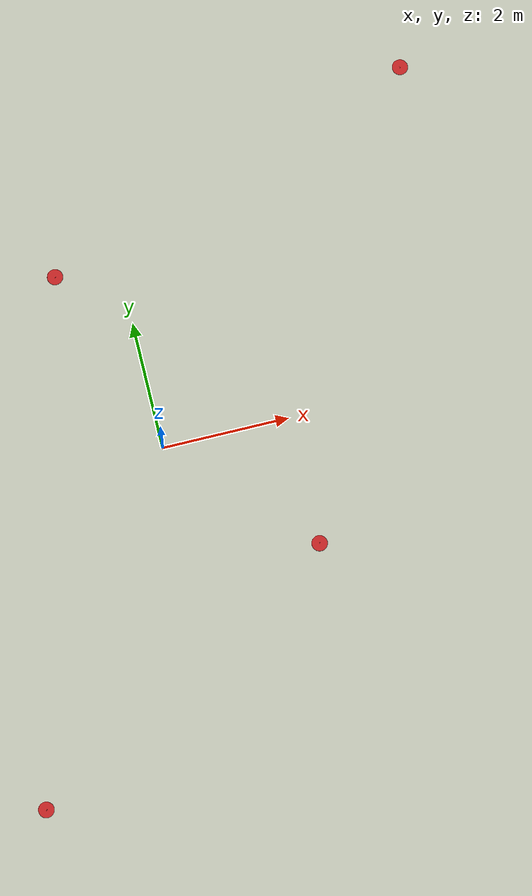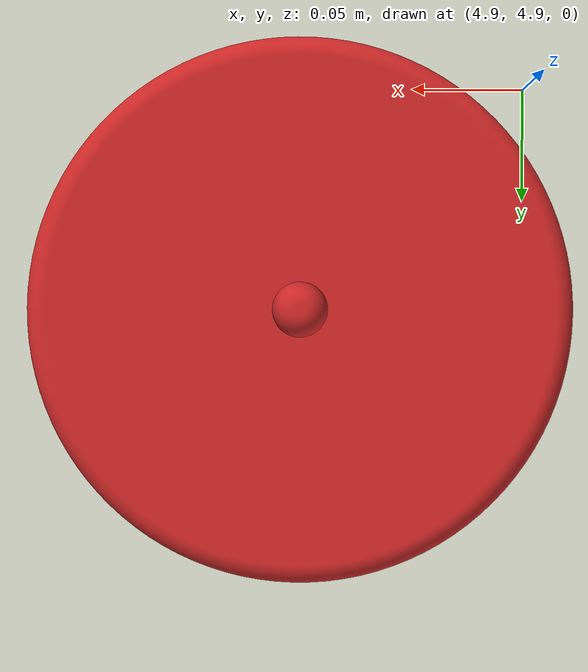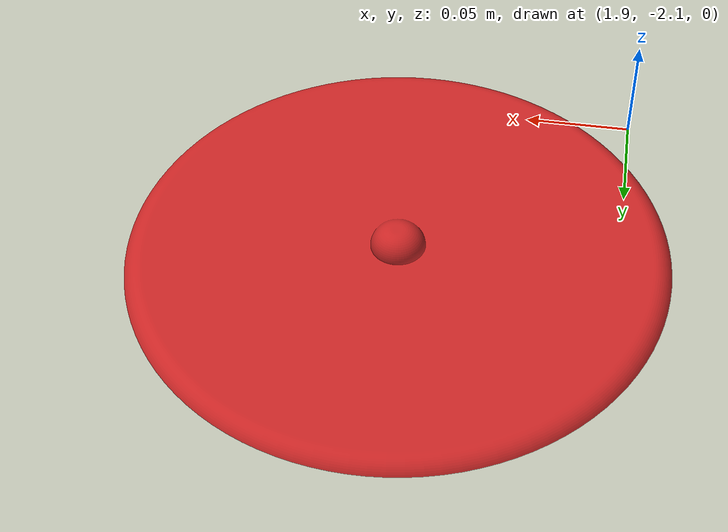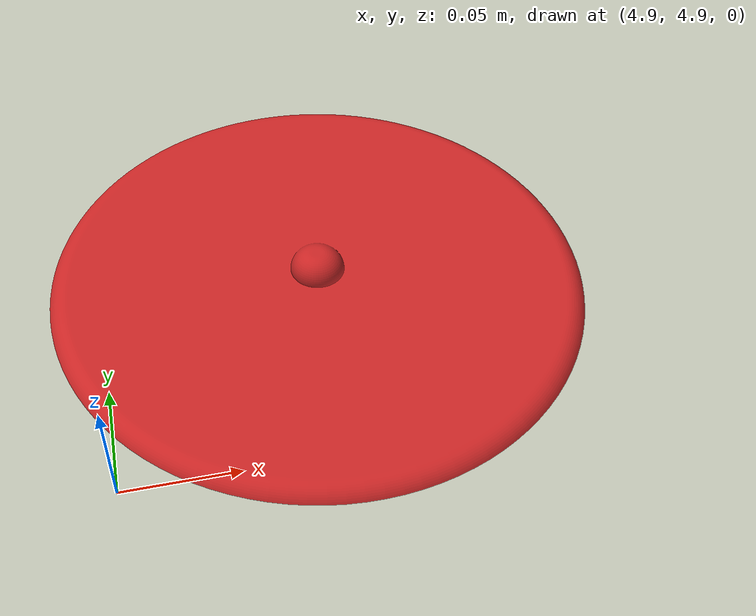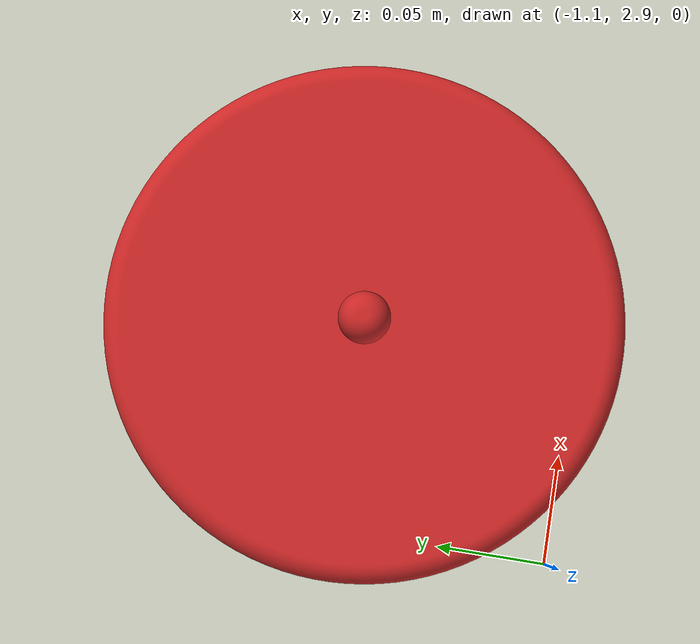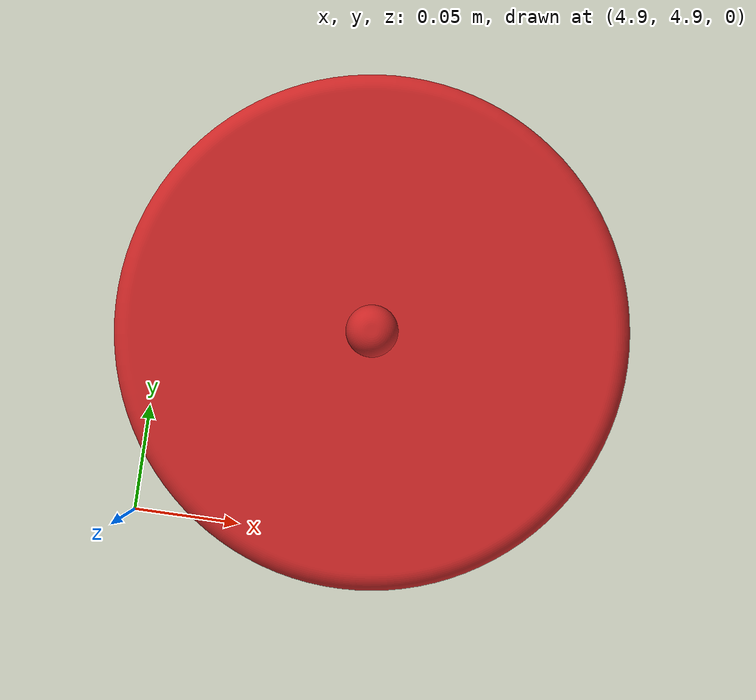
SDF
<sdf version="1.5">
 <world name="outdoor">
  <scene>
   <ambient>0.2 0.2 0.2 1.0</ambient>
   <grid>false</grid>
   <sky><clouds><speed>4</speed></clouds></sky>
  </scene>
  <physics type="ode">
   <ode>
    <solver><type>quick</type><iters>100</iters><sor>1.0</sor></solver>
    <constraints>
     <cfm>0.0</cfm>
     <erp>0.9</erp>
     <contact_max_correcting_vel>0.1</contact_max_correcting_vel>
     <contact_surface_layer>0.0</contact_surface_layer>
    </constraints>
   </ode>
   <real_time_update_rate>1000</real_time_update_rate>
   <max_step_size>0.0010</max_step_size>
  </physics>
  <light type="directional" name="sun">
   <cast_shadows>false</cast_shadows>
   <pose>0 0 100 0 0 0</pose>
   <diffuse>0.8 0.8 0.8 1</diffuse>
   <specular>0.9 0.9 0.9 1</specular>
   <attenuation>
    <range>1000</range>
    <constant>0.9</constant>
    <linear>0.01</linear>
    <quadratic>0.001</quadratic>
   </attenuation>
   <direction>0.2 0.2 -0.9</direction>
  </light>
  <model name="landmine1"><include><uri>model://landmine</uri></include><pose>5 5 0 0 0 0</pose></model>
  <model name="landmine2"><include><uri>model://landmine</uri></include><pose>2 -2 0 0 0 0</pose></model>
  <model name="landmine3"><include><uri>model://landmine</uri></include><pose>-3 -5 0 0 0 0</pose></model>
  <model name="landmine4"><include><uri>model://landmine</uri></include><pose>-1 3 0 0 0 0</pose></model>
 </world>
</sdf>

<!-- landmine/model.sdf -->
<sdf version="1.5">
  <model name="landmine">
    <static>true</static>
    <link name="link">
      <collision name="collision">
        <geometry>
          <mesh>
            <uri>model://landmine/meshes/landmine.stl</uri>
            <scale>0.001 0.001 0.001</scale>
          </mesh>
        </geometry>
        <surface>
          <friction>
            <ode>
              <mu>100</mu>
              <mu2>50</mu2>
            </ode>
          </friction>
        </surface>
      </collision>
      <visual name="visual">
        <geometry>
          <mesh>
            <uri>model://landmine/meshes/landmine.stl</uri>
            <scale>0.001 0.001 0.001</scale>
          </mesh>
        </geometry>
        <material>
          <script>
            <uri>file://media/materials/scripts/gazebo.material</uri>
            <name>Gazebo/Red</name>
          </script>
        </material>
      </visual>
    </link>
  </model>
</sdf>
